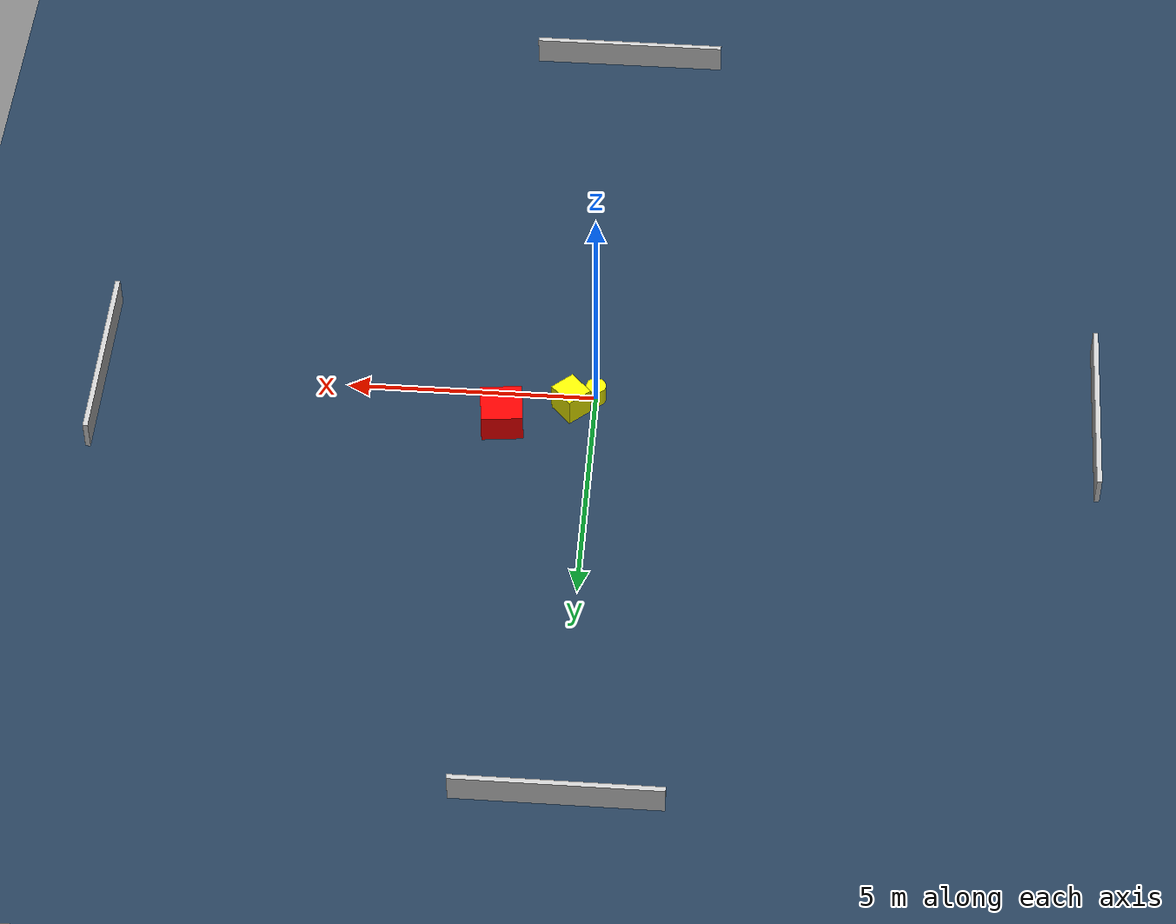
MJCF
<?xml version="1.0" ?>
<mujoco model="generated_environment">
  <option timestep="0.01" integrator="RK4" cone="elliptic"/>
  <default>
    <geom density="1"/>
  </default>
  <asset>
    <texture builtin="gradient" height="3072" name="skybox" rgb1="0.3 0.5 0.7" rgb2="0 0 0" type="skybox" width="512"/>
    <texture builtin="checker" height="300" name="groundplane" rgb1="0.2 0.3 0.4" rgb2="0.1 0.2 0.3" type="2d" width="300"/>
    <material name="groundplane" reflectance="0.2" texrepeat="5 5" texture="groundplane"/>
  </asset>
  <worldbody>
    <light dir="0 0 -1" directional="true" pos="0 0 1.5"/>
    <geom condim="3" friction="0.5 0.005 0.001" material="groundplane" name="floor" pos="0 0 0" size="0 0 0.05" type="plane"/>
    <body name="walls">
      <geom name="wall_1" condim="4" pos="-10.0 0.0 0.3" rgba="0.800000011920929 0.800000011920929 0.800000011920929 1.0" size="0.05 2.0 0.3" type="box"/>
      <geom name="wall_2" condim="4" pos="10.0 0.0 0.3" rgba="0.800000011920929 0.800000011920929 0.800000011920929 1.0" size="0.05 2.0 0.3" type="box"/>
      <geom name="wall_3" condim="4" pos="0.0 -10.0 0.3" rgba="0.800000011920929 0.800000011920929 0.800000011920929 1.0" size="2.0 0.05 0.3" type="box"/>
      <geom name="wall_4" condim="4" pos="0.0 10.0 0.3" rgba="0.800000011920929 0.800000011920929 0.800000011920929 1.0" size="2.0 0.05 0.3" type="box"/>
    </body>
    <body name="robot">
      <joint name="joint_x" type="slide" pos="0 0 0" axis="1 0 0"/>
      <joint name="joint_y" type="slide" pos="0 0 0" axis="0 1 0"/>
      <geom name="robot" type="cylinder" pos="0.0 0.0 0.2" size="0.2 0.2 0.0" mass="5.0" friction="1.0 0.005 0.0001" condim="4" rgba="1.0 1.0 0.0 1.0"/>
    </body>
    <body name="obstacle_1_movable">
      <geom name="obstacle_1_movable" condim="4" pos="0.4821453290331953 0.3094890050194053 0.3" euler="0 0 132.60082697784532" friction="0.0 0.005 0.001" rgba="1.0 1.0 0.0 1.0" size="0.2911076805348476 0.26858097129597464 0.3" type="box" mass="0.1"/>
      <joint type="free"/>
    </body>
    <body name="obstacle_2_static">
      <geom name="obstacle_2_static" condim="4" pos="1.836504286688079 0.7870301532228512 0.3" euler="0 0 276.32468431255955" friction="0.0 0.005 0.001" rgba="1.0 0.0 0.0 1.0" size="0.43506039561079934 0.41708793177275966 0.3" type="box"/>
    </body>
  </worldbody>
  <actuator>
    <motor name="actuator_x" joint="joint_x" gear="1" ctrlrange="-1 1"/>
    <motor name="actuator_y" joint="joint_y" gear="1" ctrlrange="-1 1"/>
  </actuator>
</mujoco>
